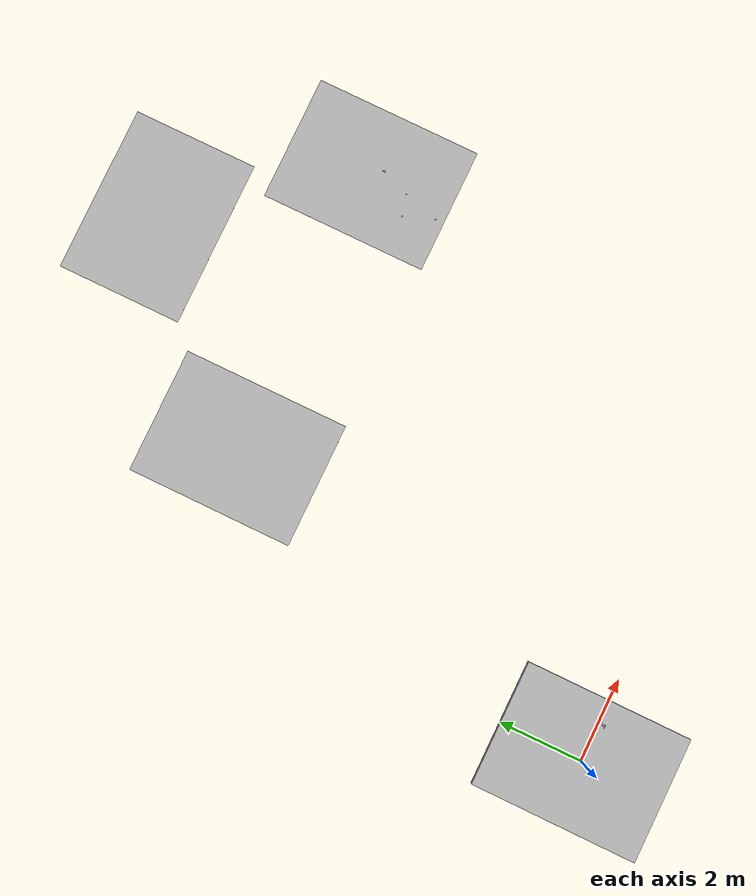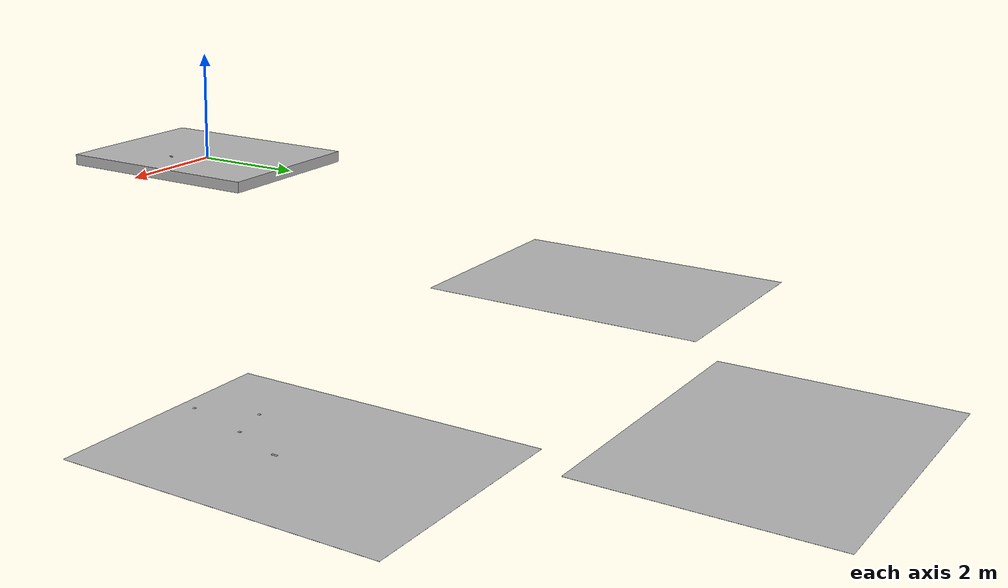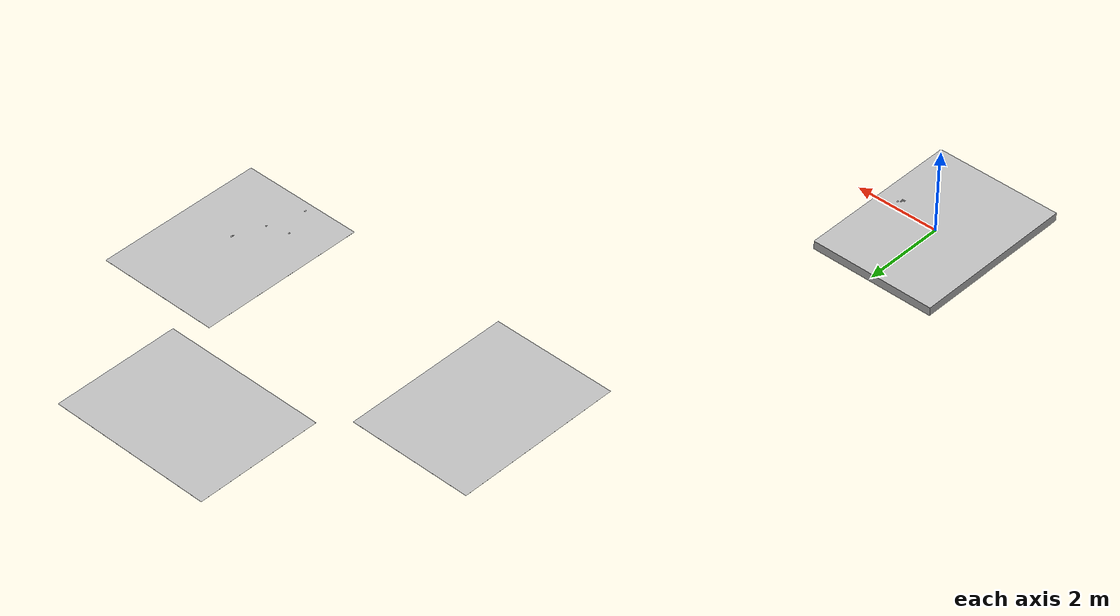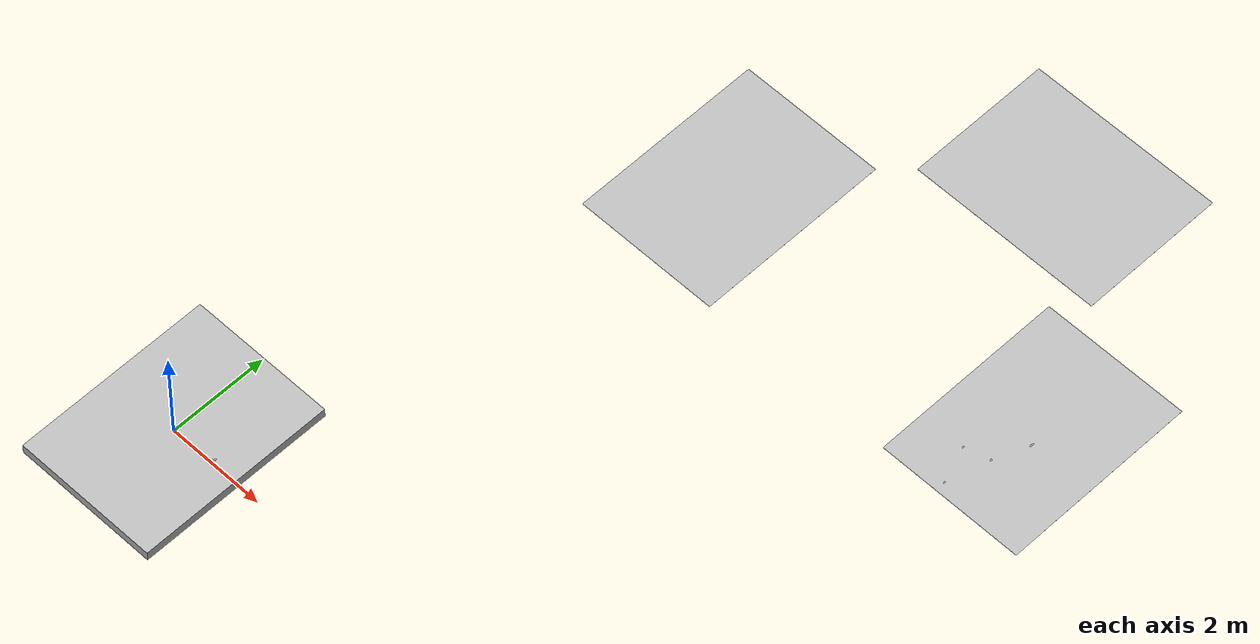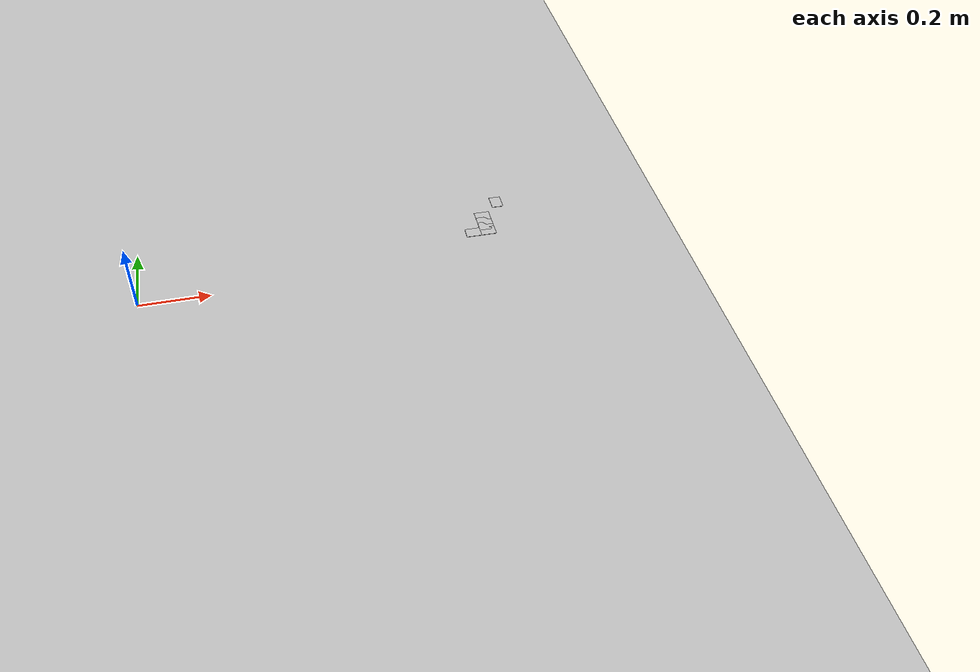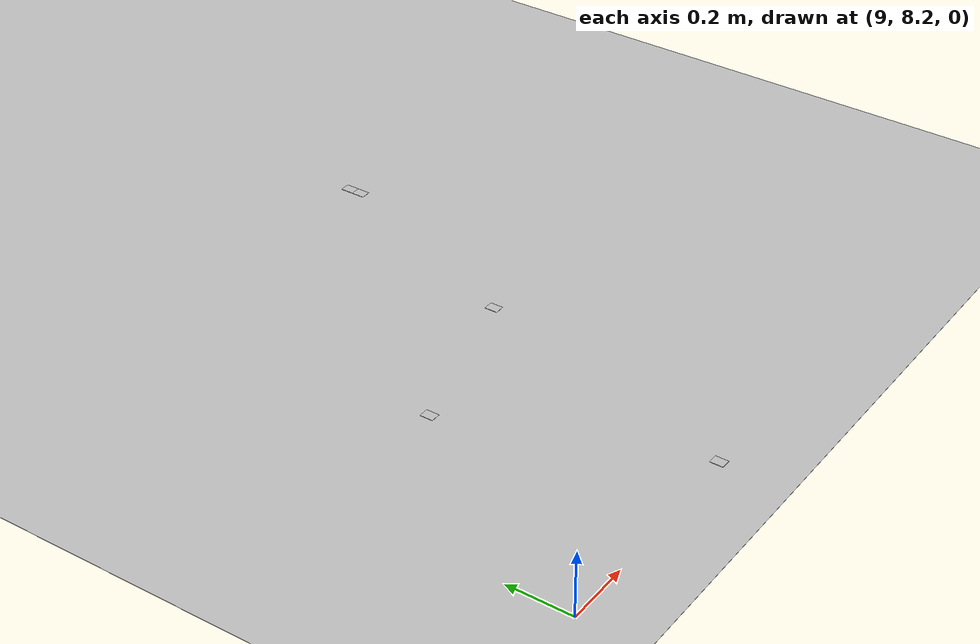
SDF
<?xml version="1.0" ?>
<sdf version="1.4">
  <world name="default">
    <scene>
      <ambient>0.1 0.1 0.1 1</ambient>
      <background>1 1 1 1</background>
      <shadows>false</shadows>
      <grid>false</grid>
    </scene>
    <physics type="ode">
      <gravity>0 0 -9.8</gravity>
      <ode>
        <solver>
          <type>quick</type>
          <iters>10</iters>
          <sor>1.3</sor>
        </solver>
        <constraints>
          <cfm>0.0</cfm>
          <erp>0.2</erp>
          <contact_max_correcting_vel>100.0</contact_max_correcting_vel>
          <contact_surface_layer>0.001</contact_surface_layer>
        </constraints>
      </ode>
      <max_step_size>0.001</max_step_size>
    </physics>
    <!-- Ground Plane -->
    <model name="plane1_model">
      <link name="body">
        <collision name="geom_1">
          <geometry>
            <plane>
              <normal>0 0 1</normal>
            </plane>
          </geometry>
        </collision>
        <visual name="visual_1">
          <geometry>
            <plane>
              <normal>0 0 1</normal>
            </plane>
          </geometry>
          <material>
            <script>Gazebo/Grey</script>
          </material>
          <cast_shadows>false</cast_shadows>
        </visual>
      </link>
      <static>true</static>
    </model>
    <model name="slide1">
      <pose>0 0 0 0 0 0</pose>
      <link name="link">
        <pose pose="0 0 0.1 0 0 0" />
        <inertial>
          <inertia>
            <ixx>1</ixx>
            <ixy>0</ixy>
            <ixz>0</ixz>
            <iyy>1</iyy>
            <iyz>0</iyz>
            <izz>1</izz>
          </inertia>
          <mass>1.0</mass>
        </inertial>
        <collision name="c">
          <geometry>
            <box>
              <size>3 4 0.2</size>
            </box>
          </geometry>
        </collision>
        <visual name="v">
          <geometry>
            <box>
              <size>3 4 0.2</size>
            </box>
          </geometry>
          <material>
            <script>nate/slide1</script>
          </material>
        </visual>
      </link>
      <static>true</static>
    </model>
    <model name="slide2">
      <pose>1 0 0.201 0 0 0</pose>
      <link name="link">
        <pose pose="0 0 0.0005 0 0 0" />
        <inertial>
          <inertia>
            <ixx>1</ixx>
            <ixy>0</ixy>
            <ixz>0</ixz>
            <iyy>1</iyy>
            <iyz>0</iyz>
            <izz>1</izz>
          </inertia>
          <mass>1.0</mass>
        </inertial>
        <collision name="c">
          <geometry>
            <box>
              <size>.03 .04 0.001</size>
            </box>
          </geometry>
        </collision>
        <visual name="v">
          <geometry>
            <box>
              <size>.03 .04 0.001</size>
            </box>
          </geometry>
          <material>
            <script>nate/slide2</script>
          </material>
        </visual>
      </link>
      <static>true</static>
    </model>
    <model name="slide3">
      <pose>0.95 -0.05 0.201 0 0 -1.5707</pose>
      <link name="link">
        <pose pose="0 0 0.0005 0 0 0" />
        <inertial>
          <inertia>
            <ixx>1</ixx>
            <ixy>0</ixy>
            <ixz>0</ixz>
            <iyy>1</iyy>
            <iyz>0</iyz>
            <izz>1</izz>
          </inertia>
          <mass>1.0</mass>
        </inertial>
        <collision name="c">
          <geometry>
            <box>
              <size>.03 .04 0.001</size>
            </box>
          </geometry>
        </collision>
        <visual name="v">
          <geometry>
            <box>
              <size>.03 .04 0.001</size>
            </box>
          </geometry>
          <material>
            <script>nate/slide3</script>
          </material>
        </visual>
      </link>
      <static>true</static>
    </model>
    <model name="slide4">
      <pose>0.95 -0.07 0.201 0 0 -1.5707</pose>
      <link name="link">
        <pose pose="0 0 0.0005 0 0 0" />
        <inertial>
          <inertia>
            <ixx>1</ixx>
            <ixy>0</ixy>
            <ixz>0</ixz>
            <iyy>1</iyy>
            <iyz>0</iyz>
            <izz>1</izz>
          </inertia>
          <mass>1.0</mass>
        </inertial>
        <collision name="c">
          <geometry>
            <box>
              <size>.03 .04 0.001</size>
            </box>
          </geometry>
        </collision>
        <visual name="v">
          <geometry>
            <box>
              <size>.03 .04 0.001</size>
            </box>
          </geometry>
          <material>
            <script>nate/slide4</script>
          </material>
        </visual>
      </link>
      <static>true</static>
    </model>
    <model name="slide5">
      <pose>0.95 -0.09 0.201 0 0 -1.5707</pose>
      <link name="link">
        <pose pose="0 0 0.0005 0 0 0" />
        <inertial>
          <inertia>
            <ixx>1</ixx>
            <ixy>0</ixy>
            <ixz>0</ixz>
            <iyy>1</iyy>
            <iyz>0</iyz>
            <izz>1</izz>
          </inertia>
          <mass>1.0</mass>
        </inertial>
        <collision name="c">
          <geometry>
            <box>
              <size>.03 .04 0.001</size>
            </box>
          </geometry>
        </collision>
        <visual name="v">
          <geometry>
            <box>
              <size>.03 .04 0.001</size>
            </box>
          </geometry>
          <material>
            <script>nate/slide5</script>
          </material>
        </visual>
      </link>
      <static>true</static>
    </model>
    <model name="slide6">
      <pose>0.95 -0.11 0.201 0 0 -1.5707</pose>
      <link name="link">
        <pose pose="0 0 0.0005 0 0 0" />
        <inertial>
          <inertia>
            <ixx>1</ixx>
            <ixy>0</ixy>
            <ixz>0</ixz>
            <iyy>1</iyy>
            <iyz>0</iyz>
            <izz>1</izz>
          </inertia>
          <mass>1.0</mass>
        </inertial>
        <collision name="c">
          <geometry>
            <box>
              <size>.03 .04 0.001</size>
            </box>
          </geometry>
        </collision>
        <visual name="v">
          <geometry>
            <box>
              <size>.03 .04 0.001</size>
            </box>
          </geometry>
          <material>
            <script>nate/slide6</script>
          </material>
        </visual>
      </link>
      <static>true</static>
    </model>
    <model name="slide7">
      <pose>0.91 -0.11 0.2011 0 0 -1.5707</pose>
      <link name="link">
        <pose pose="0 0 0.0005 0 0 0" />
        <inertial>
          <inertia>
            <ixx>1</ixx>
            <ixy>0</ixy>
            <ixz>0</ixz>
            <iyy>1</iyy>
            <iyz>0</iyz>
            <izz>1</izz>
          </inertia>
          <mass>1.0</mass>
        </inertial>
        <collision name="c">
          <geometry>
            <box>
              <size>.03 .04 0.001</size>
            </box>
          </geometry>
        </collision>
        <visual name="v">
          <geometry>
            <box>
              <size>.03 .04 0.001</size>
            </box>
          </geometry>
          <material>
            <script>nate/slide7</script>
          </material>
        </visual>
      </link>
      <static>true</static>
    </model>
    <model name="slide8">
      <pose>10 10 0 0 0 0</pose>
      <link name="link">
        <pose pose="0 0 0.0005 0 0 0" />
        <inertial>
          <inertia>
            <ixx>1</ixx>
            <ixy>0</ixy>
            <ixz>0</ixz>
            <iyy>1</iyy>
            <iyz>0</iyz>
            <izz>1</izz>
          </inertia>
          <mass>1.0</mass>
        </inertial>
        <collision name="c">
          <geometry>
            <box>
              <size>3 4 0.001</size>
            </box>
          </geometry>
        </collision>
        <visual name="v">
          <geometry>
            <box>
              <size>3 4 0.001</size>
            </box>
          </geometry>
          <material>
            <script>nate/slide8</script>
          </material>
        </visual>
      </link>
      <static>true</static>
    </model>
    <model name="slide9">
      <pose>10.2 9.78 0.005 0 0 0</pose>
      <link name="link">
        <pose pose="0 0 0.0005 0 0 0" />
        <inertial>
          <inertia>
            <ixx>1</ixx>
            <ixy>0</ixy>
            <ixz>0</ixz>
            <iyy>1</iyy>
            <iyz>0</iyz>
            <izz>1</izz>
          </inertia>
          <mass>1.0</mass>
        </inertial>
        <collision name="c">
          <geometry>
            <box>
              <size>.03 .04 0.001</size>
            </box>
          </geometry>
        </collision>
        <visual name="v">
          <geometry>
            <box>
              <size>.03 .04 0.001</size>
            </box>
          </geometry>
          <material>
            <script>nate/slide9</script>
          </material>
        </visual>
      </link>
      <static>true</static>
    </model>
    <model name="slide10">
      <pose>10.20 9.74 0.005 0 0 0</pose>
      <link name="link">
        <pose pose="0 0 0.0005 0 0 0" />
        <inertial>
          <inertia>
            <ixx>1</ixx>
            <ixy>0</ixy>
            <ixz>0</ixz>
            <iyy>1</iyy>
            <iyz>0</iyz>
            <izz>1</izz>
          </inertia>
          <mass>1.0</mass>
        </inertial>
        <collision name="c">
          <geometry>
            <box>
              <size>.03 .04 0.001</size>
            </box>
          </geometry>
        </collision>
        <visual name="v">
          <geometry>
            <box>
              <size>.03 .04 0.001</size>
            </box>
          </geometry>
          <material>
            <script>nate/slide10</script>
          </material>
        </visual>
      </link>
      <static>true</static>
    </model>
    <model name="slide11">
      <pose>9.93 9.07 0.005 0 0 0</pose>
      <link name="link">
        <pose pose="0 0 0.0005 0 0 0" />
        <inertial>
          <inertia>
            <ixx>1</ixx>
            <ixy>0</ixy>
            <ixz>0</ixz>
            <iyy>1</iyy>
            <iyz>0</iyz>
            <izz>1</izz>
          </inertia>
          <mass>1.0</mass>
        </inertial>
        <collision name="c">
          <geometry>
            <box>
              <size>.03 .04 0.001</size>
            </box>
          </geometry>
        </collision>
        <visual name="v">
          <geometry>
            <box>
              <size>.03 .04 0.001</size>
            </box>
          </geometry>
          <material>
            <script>nate/slide11</script>
          </material>
        </visual>
      </link>
      <static>true</static>
    </model>
    <model name="slide12">
      <pose>9.69 8.21 0.005 0 0 0</pose>
      <link name="link">
        <pose pose="0 0 0.0005 0 0 0" />
        <inertial>
          <inertia>
            <ixx>1</ixx>
            <ixy>0</ixy>
            <ixz>0</ixz>
            <iyy>1</iyy>
            <iyz>0</iyz>
            <izz>1</izz>
          </inertia>
          <mass>1.0</mass>
        </inertial>
        <collision name="c">
          <geometry>
            <box>
              <size>.03 .04 0.001</size>
            </box>
          </geometry>
        </collision>
        <visual name="v">
          <geometry>
            <box>
              <size>.03 .04 0.001</size>
            </box>
          </geometry>
          <material>
            <script>nate/slide12</script>
          </material>
        </visual>
      </link>
      <static>true</static>
    </model>
    <model name="slide13">
      <pose>9.43 8.93 0.005 0 0 0</pose>
      <link name="link">
        <pose pose="0 0 0.0005 0 0 0" />
        <inertial>
          <inertia>
            <ixx>1</ixx>
            <ixy>0</ixy>
            <ixz>0</ixz>
            <iyy>1</iyy>
            <iyz>0</iyz>
            <izz>1</izz>
          </inertia>
          <mass>1.0</mass>
        </inertial>
        <collision name="c">
          <geometry>
            <box>
              <size>.03 .04 0.001</size>
            </box>
          </geometry>
        </collision>
        <visual name="v">
          <geometry>
            <box>
              <size>.03 .04 0.001</size>
            </box>
          </geometry>
          <material>
            <script>nate/slide13</script>
          </material>
        </visual>
      </link>
      <static>true</static>
    </model>
    <model name="slide14">
      <pose>7 14 0.005 0 0 1.5707</pose>
      <link name="link">
        <pose pose="0 0 0.0005 0 0 0" />
        <inertial>
          <inertia>
            <ixx>1</ixx>
            <ixy>0</ixy>
            <ixz>0</ixz>
            <iyy>1</iyy>
            <iyz>0</iyz>
            <izz>1</izz>
          </inertia>
          <mass>1.0</mass>
        </inertial>
        <collision name="c">
          <geometry>
            <box>
              <size>3 4 0.001</size>
            </box>
          </geometry>
        </collision>
        <visual name="v">
          <geometry>
            <box>
              <size>3 4 0.001</size>
            </box>
          </geometry>
          <material>
            <script>nate/slide14</script>
          </material>
        </visual>
      </link>
      <static>true</static>
    </model>
    <model name="slide15">
      <pose>3 10 0.005 0 0 3.1415</pose>
      <link name="link">
        <pose pose="0 0 0.0005 0 0 0" />
        <inertial>
          <inertia>
            <ixx>1</ixx>
            <ixy>0</ixy>
            <ixz>0</ixz>
            <iyy>1</iyy>
            <iyz>0</iyz>
            <izz>1</izz>
          </inertia>
          <mass>1.0</mass>
        </inertial>
        <collision name="c">
          <geometry>
            <box>
              <size>3 4 0.001</size>
            </box>
          </geometry>
        </collision>
        <visual name="v">
          <geometry>
            <box>
              <size>3 4 0.001</size>
            </box>
          </geometry>
          <material>
            <script>nate/slide15</script>
          </material>
        </visual>
      </link>
      <static>true</static>
    </model>
    <light type="directional" name="my_light">
      <pose>0 0 10 0 0 0</pose>
      <diffuse>.9 .9 .9 1</diffuse>
      <specular>.1 .1 .1 1</specular>
      <attenuation>
        <range>20</range>
      </attenuation>
      <direction>0 0 -1</direction>
      <cast_shadows>false</cast_shadows>
    </light>
  </world>
</sdf>
